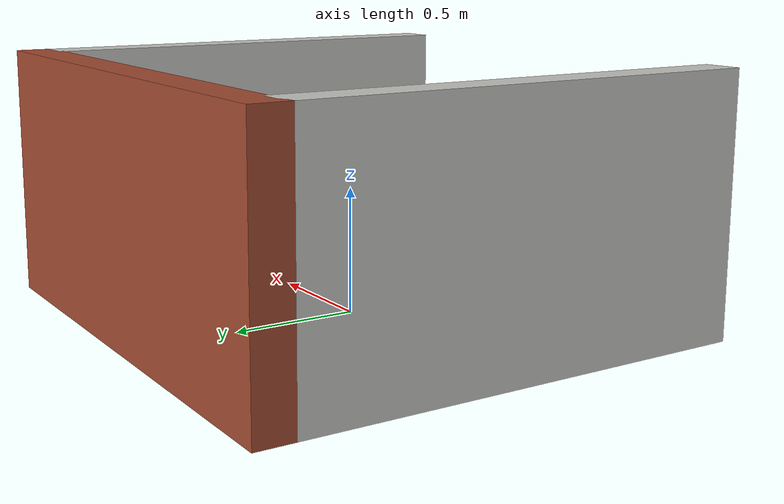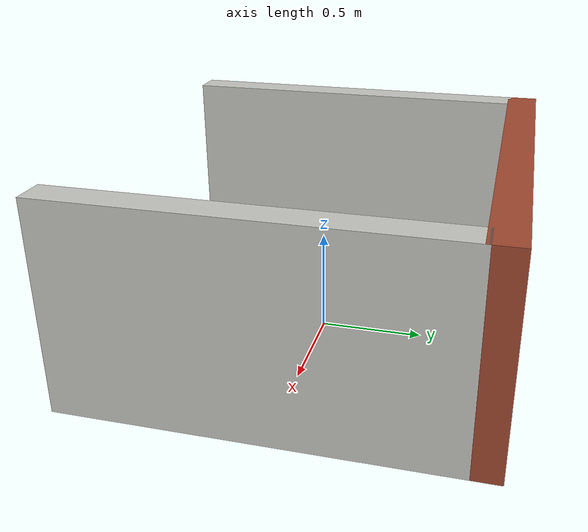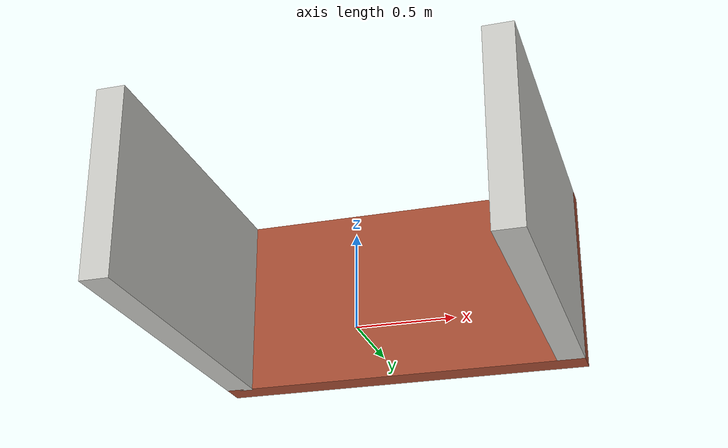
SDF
<?xml version='1.0'?>
<sdf version='1.6'>
  <model name='track_end'>
    <static>1</static>
    <pose frame=''>0 0 0 0 -0 0</pose>
    <link name='Wall_1'>
      <collision name='Wall_1_Collision'>
        <geometry>
          <box>
            <size>1.8 0.15 1.0</size>
          </box>
        </geometry>
        <pose frame=''>0 0 0.5 0 -0 0</pose>
      </collision>
      <visual name='Wall_1_Visual'>
        <pose frame=''>0 0 0.5 0 -0 0</pose>
        <geometry>
          <box>
            <size>1.8 0.15 1.0</size>
          </box>
        </geometry>
        <material>
          <script>
            <uri>file://media/materials/scripts/gazebo.material</uri>
            <name>Gazebo/CeilingTiled</name>
          </script>
          <ambient>1 0.764706 0.305882 1</ambient>
        </material>
      </visual>
      <pose frame=''>-0.95 -0.065 0 0 0 -1.5708</pose>
    </link>
    <link name='Wall_2'>
      <collision name='Wall_2_Collision'>
        <geometry>
          <box>
            <size>1.8 0.15 1.0</size>
          </box>
        </geometry>
        <pose frame=''>0 0 0.5 0 -0 0</pose>
      </collision>
      <visual name='Wall_2_Visual'>
        <pose frame=''>0 0 0.5 0 -0 0</pose>
        <geometry>
          <box>
            <size>1.8 0.15 1.0</size>
          </box>
        </geometry>
        <material>
          <script>
            <uri>file://media/materials/scripts/gazebo.material</uri>
            <name>Gazebo/CeilingTiled</name>
          </script>
          <ambient>1 0.764706 0.305882 1</ambient>
        </material>
      </visual>
      <pose frame=''>0.95 -0.065 0 0 0 -1.5708</pose>
    </link>
    <link name='Wall_3'>
      <collision name='Wall_3_Collision'>
        <geometry>
          <box>
            <size>2.05 0.15 1.5</size>
          </box>
        </geometry>
        <pose frame=''>0 0 0.75 0 -0 0</pose>
      </collision>
      <visual name='Wall_3_Visual'>
        <pose frame=''>0 0 0.5 0 -0 0</pose>
        <geometry>
          <box>
            <size>2.05 0.15 1.0</size>
          </box>
        </geometry>
        <material>
          <script>
            <uri>file://media/materials/scripts/gazebo.material</uri>
            <name>Gazebo/Bricks</name>
          </script>
          <ambient>0.996078 0.47451 0.0196078 1</ambient>
        </material>
      </visual>
      <pose frame=''>0 0.89 0 0 -0 0</pose>
    </link>
  </model>
</sdf>
